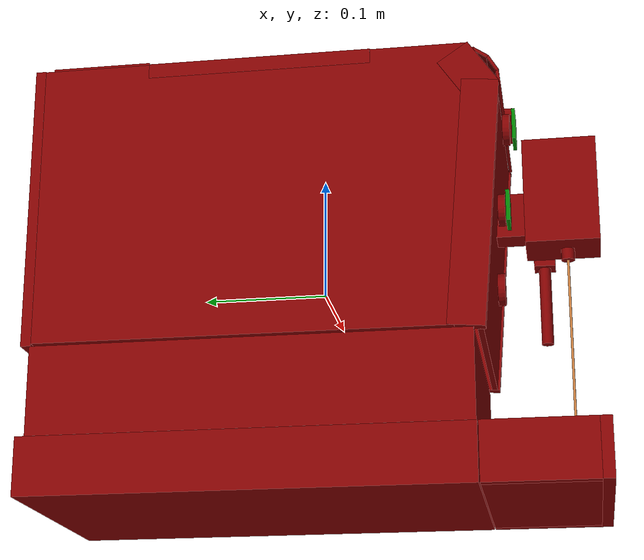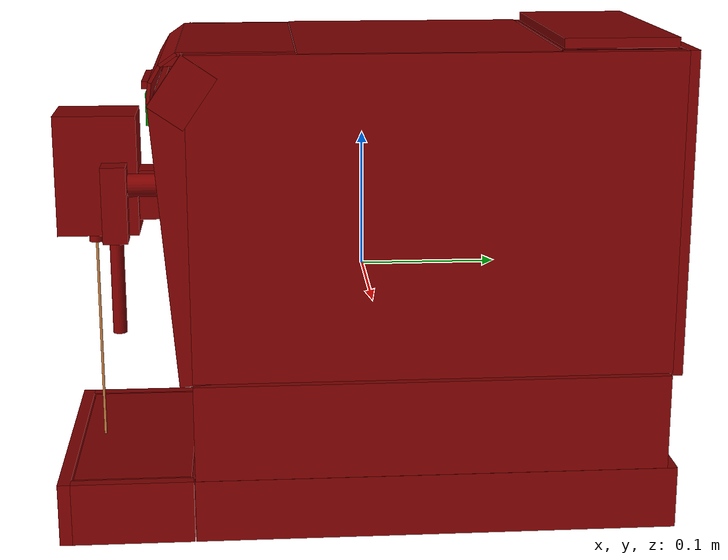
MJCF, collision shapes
<?xml version='1.0' encoding='UTF-8'?>
<mujoco model="model">
  <option timestep="0.002" gravity="0.0 0.0 -9.81"/>
  <compiler angle="radian"/>
  <asset>
    <mesh file="visuals/Body001.obj" name="Body001_vis"/>
    <mesh file="visuals/Button001.obj" name="Button001_vis"/>
    <mesh file="visuals/Button002.obj" name="Button002_vis"/>
    <mesh file="visuals/Button003.obj" name="Button003_vis"/>
    <mesh file="visuals/Container001.obj" name="Container001_vis"/>
    <mesh file="visuals/Lever001.obj" name="Lever001_vis"/>
    <mesh file="visuals/Lid001.obj" name="Lid001_vis"/>
    <mesh file="visuals/Lid002.obj" name="Lid002_vis"/>
    <mesh file="visuals/Lid003.obj" name="Lid003_vis"/>
    <texture file="visuals/T_BC001.png" name="Body001_material" type="2d"/>
    <material name="Body001_material" rgba="1 1 1 1.0" texture="Body001_material" shininess="0.1" specular="5"/>
    <texture file="visuals/T_BC001.png" name="Button001_material" type="2d"/>
    <material name="Button001_material" rgba="1 1 1 1.0" texture="Button001_material" shininess="0.1" specular="5"/>
    <texture file="visuals/T_BC001.png" name="Button002_material" type="2d"/>
    <material name="Button002_material" rgba="1 1 1 1.0" texture="Button002_material" shininess="0.1" specular="5"/>
    <texture file="visuals/T_BC001.png" name="Button003_material" type="2d"/>
    <material name="Button003_material" rgba="1 1 1 1.0" texture="Button003_material" shininess="0.1" specular="5"/>
    <texture file="visuals/T_BC001.png" name="Container001_material" type="2d"/>
    <material name="Container001_material" rgba="1 1 1 1.0" texture="Container001_material" shininess="0.1" specular="5"/>
    <texture file="visuals/T_BC001.png" name="Lid003_material" type="2d"/>
    <material name="Lid003_material" rgba="1 1 1 1.0" texture="Lid003_material" shininess="0.1" specular="5"/>
    <texture file="visuals/T_BC001.png" name="Lever001_material" type="2d"/>
    <material name="Lever001_material" rgba="1 1 1 1.0" texture="Lever001_material" shininess="0.1" specular="5"/>
    <texture file="visuals/T_BC001.png" name="Lid001_material" type="2d"/>
    <material name="Lid001_material" rgba="1 1 1 1.0" texture="Lid001_material" shininess="0.1" specular="5"/>
    <texture file="visuals/T_BC001.png" name="Lid002_material" type="2d"/>
    <material name="Lid002_material" rgba="1 1 1 1.0" texture="Lid002_material" shininess="0.1" specular="5"/>
  </asset>
  <default>
    <default class="visual">
      <geom conaffinity="0" contype="0" group="1" type="mesh"/>
    </default>
    <default class="collision">
      <geom group="0" rgba="0.5 0 0 0.5"/>
    </default>
    <default class="spawn">
      <geom group="0" rgba="1 1 1 0.5" contype="0" conaffinity="0"/>
      <site group="0" rgba="1 1 1 0.5"/>
    </default>
    <default class="region">
      <geom group="1" conaffinity="0" contype="0" rgba="0 1 0 0"/>
    </default>
  </default>
  <worldbody>
    <body>
      <body name="object">
        <geom class="collision" type="box" pos="-0.06396744 -0.16069673 0.11038813" size="0.012454398907721043 0.0013370945816859603 0.012454316020011902" quat="1.0 0.0 0.0 0.0" name="start_button_1" rgba="0.0 0.5 0 0.5"/>
        <geom class="collision" type="box" pos="-0.06408685 -0.15391678 0.04266503" size="0.012454338371753693 0.0015078996075317264 0.01245432160794735" quat="1.0 0.0 0.0 0.0" name="start_button_2" rgba="0.0 0.5 0 0.5"/>
        <geom mesh="Body001_vis" type="mesh" solimp="0.998 0.998 0.001" solref="0.001 1" friction="0.95 0.3 0.1" class="visual" material="Body001_material"/>
        <geom class="collision" type="cylinder" pos="0.06288725 -0.15648553 0.07606557" size="0.008056246675550938 0.012253980152308941" quat="0.7071068286895752 0.7071067690849304 1.5700924318127872e-16 5.9269340452702814e-24"/>
        <geom class="collision" type="box" pos="0.00020302 0.04856274 -0.15574561" size="0.10030192136764526 0.17532673478126526 0.023175692185759544" quat="1.0 0.0 0.0 0.0"/>
        <geom class="collision" type="box" pos="0.00020302 0.04492373 -0.09706385" size="0.10030192136764526 0.17136108875274658 0.035418324172496796" quat="1.0 0.0 0.0 0.0"/>
        <geom class="collision" type="box" pos="-0.09549255 0.04492373 0.05587175" size="0.004492629785090685 0.17136108875274658 0.11534131318330765" quat="1.0 0.0 0.0 0.0"/>
        <geom class="collision" type="box" pos="0.09602071 0.04492373 0.05587175" size="0.004492629785090685 0.17136108875274658 0.11534139513969421" quat="1.0 0.0 0.0 0.0"/>
        <geom class="collision" type="box" pos="0.00020303 0.21935031 0.05511015" size="0.10030192136764526 0.004088344983756542 0.1164228618144989" quat="1.0 0.0 0.0 0.0"/>
        <geom class="collision" type="box" pos="0.09554862 -0.12872013 0.03857285" size="0.004956316668540239 0.014541011303663254 0.09908513724803925" quat="0.9991850256919861 0.04036397114396095 8.962599544324336e-18 -5.228859986187535e-25"/>
        <geom class="collision" type="box" pos="-0.09549177 -0.12878671 0.03939568" size="0.004607123788446188 0.014541011303663254 0.09991065412759781" quat="0.9991850256919861 0.04036397114396095 8.962599544324336e-18 -5.228859986187535e-25"/>
        <geom class="collision" type="box" pos="0.00002957 -0.13918558 0.03855414" size="0.09042280912399292 0.0023432003799825907 0.09991065412759781" quat="0.9991850256919861 0.04036397114396095 8.962599544324336e-18 -5.228859986187535e-25"/>
        <geom class="collision" type="box" pos="0.00070939 -0.19451000 0.07448869" size="0.023677539080381393 0.029724985361099243 0.04406319558620453" quat="1.0 0.0 0.0 0.0"/>
        <geom class="collision" type="box" pos="0.00053378 -0.17147209 -0.16036270" size="0.09165715426206589 0.043758608400821686 0.018558593466877937" quat="1.0 0.0 0.0 0.0"/>
        <geom class="collision" type="box" pos="0.00020302 -0.21978697 -0.15574561" size="0.10030192136764526 0.00455628614872694 0.023175692185759544" quat="1.0 0.0 0.0 0.0"/>
        <geom class="collision" type="box" pos="-0.09561113 -0.17147209 -0.15574561" size="0.004487762693315744 0.043758608400821686 0.023175692185759544" quat="1.0 0.0 0.0 0.0"/>
        <geom class="collision" type="box" pos="0.09634794 -0.17147209 -0.15574561" size="0.004157003480941057 0.043758608400821686 0.023175692185759544" quat="1.0 0.0 0.0 0.0"/>
        <geom class="collision" type="box" pos="0.00052914 -0.15190750 0.05782206" size="0.01218169555068016 0.013381470926105976 0.0182904452085495" quat="1.0 0.0 0.0 0.0"/>
        <geom class="collision" type="box" pos="0.09604628 -0.12776691 0.14615590" size="0.00459122471511364 0.014541011303663254 0.021065162494778633" quat="0.9551610350608826 -0.29608675837516785 -6.574465257540456e-17 -3.0563850948379964e-23"/>
        <geom class="collision" type="box" pos="-0.09548892 -0.12776691 0.14615590" size="0.00459122471511364 0.014541011303663254 0.021065162494778633" quat="0.9551610350608826 -0.29608675837516785 -6.574465257540456e-17 -3.0563850948379964e-23"/>
        <geom class="collision" type="box" pos="0.00020302 0.03904795 0.16570480" size="0.10030192136764526 0.08968072384595871 0.006002367474138737" quat="1.0 0.0 0.0 0.0"/>
        <geom class="collision" type="box" pos="0.00020302 0.03904795 0.16570480" size="0.10030192136764526 0.08968072384595871 0.006002367474138737" quat="1.0 0.0 0.0 0.0"/>
        <geom class="collision" type="box" pos="0.00020302 -0.05159941 0.13392063" size="0.09669580310583115 0.00526750274002552 0.03513530641794205" quat="1.0 0.0 0.0 0.0"/>
        <geom class="collision" type="box" pos="0.00020302 -0.09839781 0.09947141" size="0.09669580310583115 0.04499252885580063 0.005267506465315819" quat="1.0 0.0 0.0 0.0"/>
        <geom class="collision" type="cylinder" pos="0.00028545 -0.19816972 0.02557212" size="0.005428990349173546 0.004656217992305756" quat="1.0 0.0 0.0 0.0"/>
        <body name="Button001">
          <joint axis="0.0 1.0 0.0" pos="-0.06386620 -0.15146187 0.11044580" limited="true" name="Button001_joint" range="0.0 0.004" type="slide" damping="1" frictionloss="1" armature=".01" stiffness="0.05"/>
          <geom mesh="Button001_vis" type="mesh" solimp="0.998 0.998 0.001" solref="0.001 1" friction="0.95 0.3 0.1" class="visual" material="Button001_material"/>
          <geom class="collision" type="cylinder" pos="-0.06368142 -0.15446430 0.11038813" size="0.012454431504011154 0.0027574144769459963" quat="0.7071067094802856 0.7071068286895752 0.0 0.0"/>
        </body>
        <body name="Button002">
          <joint axis="0.0 1.0 0.0" pos="-0.06386620 -0.14499041 0.04269494" limited="true" name="Button002_joint" range="0.0 0.004" type="slide" damping="1" frictionloss="1" armature=".01" stiffness="0.05"/>
          <geom mesh="Button002_vis" type="mesh" solimp="0.998 0.998 0.001" solref="0.001 1" friction="0.95 0.3 0.1" class="visual" material="Button002_material"/>
          <geom class="collision" type="cylinder" pos="-0.06393294 -0.14884672 0.04266503" size="0.012454431504011154 0.0027574144769459963" quat="0.7071067094802856 0.7071068286895752 0.0 0.0"/>
        </body>
        <body name="Button003">
          <joint axis="0.0 1.0 0.0" pos="-0.06386620 -0.13974519 -0.02230506" limited="true" name="Button003_joint" range="0.0 0.004" type="slide" damping="1" frictionloss="1" armature=".01" stiffness="0.05"/>
          <geom mesh="Button003_vis" type="mesh" solimp="0.998 0.998 0.001" solref="0.001 1" friction="0.95 0.3 0.1" class="visual" material="Button003_material"/>
          <geom class="collision" type="cylinder" pos="-0.06368501 -0.14687139 -0.02241159" size="0.012454431504011154 0.0027574144769459963" quat="0.7071067094802856 0.7071068286895752 0.0 0.0"/>
        </body>
        <body name="Container001">
          <geom mesh="Container001_vis" type="mesh" solimp="0.998 0.998 0.001" solref="0.001 1" friction="0.95 0.3 0.1" class="visual" material="Container001_material"/>
          <geom class="collision" type="box" pos="0.08951392 0.17197920 0.06023546" size="0.001132889068685472 0.04197805002331734 0.11107336729764938" quat="1.0 0.0 0.0 0.0"/>
          <geom class="collision" type="box" pos="-0.08930790 0.17215455 0.06023546" size="0.001132889068685472 0.04197805002331734 0.11107343435287476" quat="1.0 0.0 0.0 0.0"/>
          <geom class="collision" type="box" pos="0.00007940 0.13129920 0.06023546" size="0.08835609257221222 0.0011226973729208112 0.11107519268989563" quat="1.0 0.0 0.0 0.0"/>
          <geom class="collision" type="box" pos="0.00007940 0.21259862 0.06023546" size="0.08835609257221222 0.0011226973729208112 0.11107519268989563" quat="1.0 0.0 0.0 0.0"/>
          <geom class="collision" type="box" pos="0.00020302 0.17222002 -0.05015059" size="0.08842023462057114 0.040272682905197144 0.000982703291811049" quat="1.0 0.0 0.0 0.0"/>
          <body name="Lid003">
            <geom mesh="Lid003_vis" type="mesh" solimp="0.998 0.998 0.001" solref="0.001 1" friction="0.95 0.3 0.1" class="visual" material="Lid003_material"/>
            <geom class="collision" type="box" pos="0.00020302 0.17222002 0.17551084" size="0.08842006325721741 0.040272682905197144 0.0034773049410432577" quat="1.0 0.0 0.0 0.0"/>
          </body>
        </body>
        <body name="Lever001">
          <joint axis="0.0 -1.0 0.0" pos="0.06290887 -0.17638843 0.08261302" limited="true" name="Lever001_joint" range="0.0 0.6108652381980153" type="hinge" damping="1" frictionloss="1" armature=".01" stiffness="0.01" springref="-0.01"/>
          <geom mesh="Lever001_vis" type="mesh" solimp="0.998 0.998 0.001" solref="0.001 1" friction="0.95 0.3 0.1" class="visual" material="Lever001_material"/>
          <geom class="collision" type="cylinder" pos="0.06288725 -0.17809454 0.00448112" size="0.00493957381695509 0.035467665642499924" quat="1.0 0.0 0.0 0.0"/>
          <geom class="collision" type="box" pos="0.06297077 -0.17830424 0.06306256" size="0.009267578832805157 0.008784784004092216 0.027356160804629326" quat="1.0 0.0 0.0 0.0"/>
        </body>
        <body name="Lid001">
          <geom mesh="Lid001_vis" type="mesh" solimp="0.998 0.998 0.001" solref="0.001 1" friction="0.95 0.3 0.1" class="visual" material="Lid001_material"/>
          <geom class="collision" type="box" pos="0.00053378 -0.17147209 -0.13564536" size="0.089920274913311 0.0420563779771328 0.0030754252802580595" quat="1.0 0.0 0.0 0.0"/>
        </body>
        <body name="Lid002">
          <joint axis="-1.0 0.0 0.0" pos="0.00029205 -0.05219898 0.17198733" limited="true" name="Lid002_joint" range="0.0 1.5707963267948966" type="hinge" damping="1" frictionloss="1" armature=".01" stiffness="0.05"/>
          <geom mesh="Lid002_vis" type="mesh" solimp="0.998 0.998 0.001" solref="0.001 1" friction="0.95 0.3 0.1" class="visual" material="Lid002_material"/>
          <geom class="collision" type="box" pos="0.00020302 -0.09192484 0.17072830" size="0.09019233286380768 0.04027280583977699 0.0012571030529215932" quat="1.0 0.0 0.0 0.0"/>
          <geom class="collision" type="box" pos="0.00020302 -0.13711783 0.16688070" size="0.09019233286380768 0.007249854505062103 0.0012571030529215932" quat="0.9543087482452393 0.2988223135471344 -6.635187593691239e-17 2.7366129116141502e-24"/>
          <geom class="collision" type="box" pos="0.00020302 -0.14650223 0.15678536" size="0.09019233286380768 0.007249854505062103 0.0012571030529215932" quat="0.8693401217460632 0.4942142963409424 -1.097376314142167e-16 -4.3725526568614845e-24"/>
          <geom class="collision" type="box" pos="0.00020302 -0.15048617 0.14460187" size="0.09019233286380768 0.007249854505062103 0.0012571030529215932" quat="0.7456978559494019 0.6662842631340027 -1.4794482597535523e-16 -3.7330905686062066e-24"/>
          <geom class="collision" type="box" pos="0.00020302 -0.15517670 0.14143081" size="0.030129704624414444 0.0038788029924035072 0.002748164115473628" quat="1.0 0.0 0.0 0.0"/>
        </body>
        <site type="cylinder" rgba="0.8 0.5 0.25 1" size="0.0009738599765114486 0.08700881898403168" pos="0.00024358 -0.19805926 -0.06533338" name="coffee_liquid"/>
        <site rgba="0 0 0 0" size="0.009999999776482582 0.009999999776482582" pos="-0.00000009 -0.19824256 -0.13106488" name="receptacle_place_site"/>
        <geom class="region" name="reg_main" type="box" pos="0.0 0.0 9.994999999998755e-06" size="0.10151143 0.22485475 0.17998386500000002"/>
      </body>
    </body>
  </worldbody>
  <actuator>
    <motor name="Button001_joint_actuator" joint="Button001_joint" gear="0.5"/>
    <motor name="Button002_joint_actuator" joint="Button002_joint" gear="0.5"/>
    <motor name="Button003_joint_actuator" joint="Button003_joint" gear="0.5"/>
    <motor name="Lever001_joint_actuator" joint="Lever001_joint" gear="10"/>
    <motor name="Lid002_joint_actuator" joint="Lid002_joint" gear="10"/>
  </actuator>
</mujoco>
